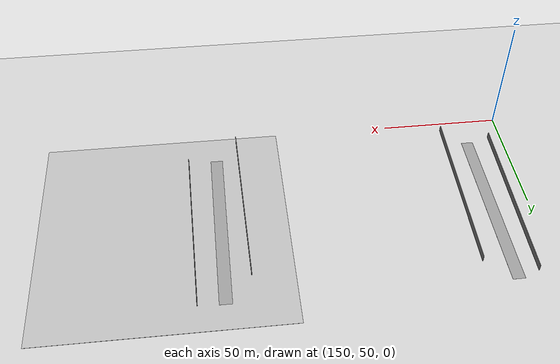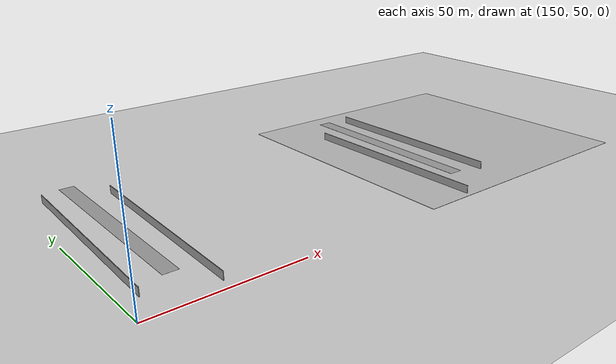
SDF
<sdf version="1.6">
 <world name="default">
  <model name="ground1_9">
   <static>1</static>
   <link name="link">
    <collision name="collision">
     <geometry><plane><normal>0 0 1</normal><size>100 100</size></plane></geometry>
     <surface><friction><ode><mu>100</mu><mu2>50</mu2></ode></friction></surface>
    </collision>
    <visual name="visual">
     <cast_shadows>0</cast_shadows>
     <geometry><plane><normal>0 0 1</normal><size>100 100</size></plane></geometry>
     <material>
      <script>
       <uri>model://ground1/materials/scripts</uri>
       <uri>model://ground1/materials/textures/</uri>
       <name>ground1/Image</name>
      </script>
     </material>
    </visual>
   </link>
   <pose>199.793 97.511 0 0 -0 0</pose>
  </model>
  <model name="ground1_12">
   <static>1</static>
   <link name="link">
    <collision name="collision">
     <geometry><plane><normal>0 0 1</normal><size>100 100</size></plane></geometry>
     <surface><friction><ode><mu>100</mu><mu2>50</mu2></ode></friction></surface>
    </collision>
    <visual name="visual">
     <cast_shadows>0</cast_shadows>
     <geometry><plane><normal>0 0 1</normal><size>100 100</size></plane></geometry>
     <material>
      <script>
       <uri>model://ground1/materials/scripts</uri>
       <uri>model://ground1/materials/textures/</uri>
       <name>ground1/Image</name>
      </script>
     </material>
    </visual>
   </link>
   <pose>299.79 99.7189 0 0 -0 0</pose>
  </model>
  <model name="grey_wall2_3_clone_2">
   <static>1</static>
   <link name="link">
    <pose>0 0 1.4 0 -0 0</pose>
    <collision name="collision"><geometry><box><size>75 5 0.01</size></box></geometry></collision>
    <visual name="visual">
     <cast_shadows>0</cast_shadows>
     <geometry><box><size>75 5 0.01</size></box></geometry>
     <material>
      <script>
       <uri>model://grey_wall/materials/scripts</uri>
       <uri>model://grey_wall/materials/textures</uri>
       <name>vrc/grey_wall</name>
      </script>
     </material>
    </visual>
   </link>
   <pose>166.448 102.234 0 0 0 -1.57442</pose>
  </model>
  <model name="grey_wall2_3_clone_5">
   <static>1</static>
   <link name="link">
    <pose>0 0 1.4 0 -0 0</pose>
    <collision name="collision"><geometry><box><size>75 5 0.01</size></box></geometry></collision>
    <visual name="visual">
     <cast_shadows>0</cast_shadows>
     <geometry><box><size>75 5 0.01</size></box></geometry>
     <material>
      <script>
       <uri>model://grey_wall/materials/scripts</uri>
       <uri>model://grey_wall/materials/textures</uri>
       <name>vrc/grey_wall</name>
      </script>
     </material>
    </visual>
   </link>
   <pose>277.017 102.145 0 0 0 -1.57442</pose>
  </model>
  <model name="grey_wall_clone">
   <static>1</static>
   <link name="link">
    <pose>0 0 1.4 0 -0 0</pose>
    <collision name="collision"><geometry><box><size>75 0.2 2.8</size></box></geometry></collision>
    <visual name="visual">
     <cast_shadows>0</cast_shadows>
     <geometry><box><size>75 0.2 2.8</size></box></geometry>
     <material>
      <script>
       <uri>model://grey_wall/materials/scripts</uri>
       <uri>model://grey_wall/materials/textures</uri>
       <name>vrc/grey_wall</name>
      </script>
     </material>
    </visual>
   </link>
   <pose>267.2 88.9022 0 0 0 -1.55588</pose>
  </model>
  <model name="grey_wall_clone_clone_0">
   <static>1</static>
   <link name="link">
    <pose>0 0 1.4 0 -0 0</pose>
    <collision name="collision"><geometry><box><size>75 0.2 2.8</size></box></geometry></collision>
    <visual name="visual">
     <cast_shadows>0</cast_shadows>
     <geometry><box><size>75 0.2 2.8</size></box></geometry>
     <material>
      <script>
       <uri>model://grey_wall/materials/scripts</uri>
       <uri>model://grey_wall/materials/textures</uri>
       <name>vrc/grey_wall</name>
      </script>
     </material>
    </visual>
   </link>
   <pose>288.276 100.808 0 0 0 -1.55588</pose>
  </model>
  <model name="grey_wall_clone_clone_0_clone_0">
   <static>1</static>
   <link name="link">
    <pose>0 0 1.4 0 -0 0</pose>
    <collision name="collision"><geometry><box><size>75 0.2 2.8</size></box></geometry></collision>
    <visual name="visual">
     <cast_shadows>0</cast_shadows>
     <geometry><box><size>75 0.2 2.8</size></box></geometry>
     <material>
      <script>
       <uri>model://grey_wall/materials/scripts</uri>
       <uri>model://grey_wall/materials/textures</uri>
       <name>vrc/grey_wall</name>
      </script>
     </material>
    </visual>
   </link>
   <pose>176.556 91.5974 0 0 0 -1.59331</pose>
  </model>
  <model name="grey_wall_clone_clone_0_clone_4">
   <static>1</static>
   <link name="link">
    <pose>0 0 1.4 0 -0 0</pose>
    <collision name="collision"><geometry><box><size>75 0.2 2.8</size></box></geometry></collision>
    <visual name="visual">
     <cast_shadows>0</cast_shadows>
     <geometry><box><size>75 0.2 2.8</size></box></geometry>
     <material>
      <script>
       <uri>model://grey_wall/materials/scripts</uri>
       <uri>model://grey_wall/materials/textures</uri>
       <name>vrc/grey_wall</name>
      </script>
     </material>
    </visual>
   </link>
   <pose>156.367 98.1438 0 0 0 -1.59331</pose>
  </model>
 </world>
</sdf>
